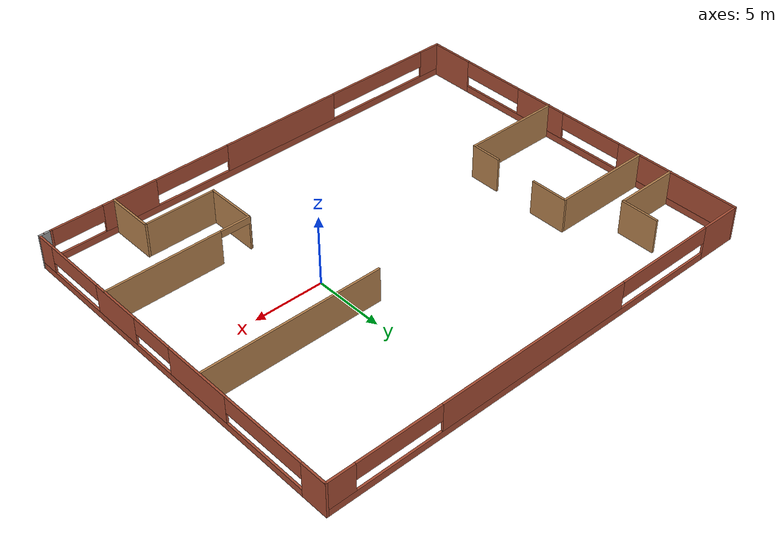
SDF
<?xml version='1.0'?>
<sdf version='1.6'>
  <model name='Building'>
    <pose frame=''>-5.08102 0.749197 0 0 -0 0</pose>
    <link name='Wall_125'>
      <pose frame=''>0.059584 13.1786 0 0 -0 0</pose>
      <visual name='Wall_125_Visual_0'>
        <pose frame=''>-15.0244 0 1.25 0 -0 0</pose>
        <geometry>
          <box>
            <size>2.9511 0.15 2.5</size>
          </box>
        </geometry>
        <material>
          <script>
            <uri>file://media/materials/scripts/gazebo.material</uri>
            <name>Gazebo/Bricks</name>
          </script>
          <ambient>1 1 1 1</ambient>
        </material>
        <meta>
          <layer>0</layer>
        </meta>
      </visual>
      <collision name='Wall_125_Collision_0'>
        <geometry>
          <box>
            <size>2.9511 0.15 2.5</size>
          </box>
        </geometry>
        <pose frame=''>-15.0244 0 1.25 0 -0 0</pose>
      </collision>
      <visual name='Wall_125_Visual_1'>
        <pose frame=''>1.47555 0 0.25 0 -0 0</pose>
        <geometry>
          <box>
            <size>30.0489 0.15 0.5</size>
          </box>
        </geometry>
        <material>
          <script>
            <uri>file://media/materials/scripts/gazebo.material</uri>
            <name>Gazebo/Bricks</name>
          </script>
          <ambient>1 1 1 1</ambient>
        </material>
        <meta>
          <layer>0</layer>
        </meta>
      </visual>
      <collision name='Wall_125_Collision_1'>
        <geometry>
          <box>
            <size>30.0489 0.15 0.5</size>
          </box>
        </geometry>
        <pose frame=''>1.47555 0 0.25 0 -0 0</pose>
      </collision>
      <visual name='Wall_125_Visual_2'>
        <pose frame=''>1.21611 0 1.5 0 -0 0</pose>
        <geometry>
          <box>
            <size>14.4547 0.15 2</size>
          </box>
        </geometry>
        <material>
          <script>
            <uri>file://media/materials/scripts/gazebo.material</uri>
            <name>Gazebo/Bricks</name>
          </script>
          <ambient>1 1 1 1</ambient>
        </material>
        <meta>
          <layer>0</layer>
        </meta>
      </visual>
      <collision name='Wall_125_Collision_2'>
        <geometry>
          <box>
            <size>14.4547 0.15 2</size>
          </box>
        </geometry>
        <pose frame=''>1.21611 0 1.5 0 -0 0</pose>
      </collision>
      <visual name='Wall_125_Visual_3'>
        <pose frame=''>15.494 0 1.5 0 -0 0</pose>
        <geometry>
          <box>
            <size>2.0121 0.15 2</size>
          </box>
        </geometry>
        <material>
          <script>
            <uri>file://media/materials/scripts/gazebo.material</uri>
            <name>Gazebo/Bricks</name>
          </script>
          <ambient>1 1 1 1</ambient>
        </material>
        <meta>
          <layer>0</layer>
        </meta>
      </visual>
      <collision name='Wall_125_Collision_3'>
        <geometry>
          <box>
            <size>2.0121 0.15 2</size>
          </box>
        </geometry>
        <pose frame=''>15.494 0 1.5 0 -0 0</pose>
      </collision>
      <visual name='Wall_125_Visual_4'>
        <pose frame=''>-9.78007 0 1.9 0 -0 0</pose>
        <geometry>
          <box>
            <size>7.53766 0.15 1.2</size>
          </box>
        </geometry>
        <material>
          <script>
            <uri>file://media/materials/scripts/gazebo.material</uri>
            <name>Gazebo/Bricks</name>
          </script>
          <ambient>1 1 1 1</ambient>
        </material>
        <meta>
          <layer>0</layer>
        </meta>
      </visual>
      <collision name='Wall_125_Collision_4'>
        <geometry>
          <box>
            <size>7.53766 0.15 1.2</size>
          </box>
        </geometry>
        <pose frame=''>-9.78007 0 1.9 0 -0 0</pose>
      </collision>
      <visual name='Wall_125_Visual_5'>
        <pose frame=''>11.4657 0 1.9 0 -0 0</pose>
        <geometry>
          <box>
            <size>6.04445 0.15 1.2</size>
          </box>
        </geometry>
        <material>
          <script>
            <uri>file://media/materials/scripts/gazebo.material</uri>
            <name>Gazebo/Bricks</name>
          </script>
          <ambient>1 1 1 1</ambient>
        </material>
        <meta>
          <layer>0</layer>
        </meta>
      </visual>
      <collision name='Wall_125_Collision_5'>
        <geometry>
          <box>
            <size>6.04445 0.15 1.2</size>
          </box>
        </geometry>
        <pose frame=''>11.4657 0 1.9 0 -0 0</pose>
      </collision>
    </link>
    <link name='Wall_127'>
      <pose frame=''>-0.149643 -13.1714 0 0 -0 3.14159</pose>
      <visual name='Wall_127_Visual_0'>
        <pose frame=''>-16.0964 0 1.25 0 -0 0</pose>
        <geometry>
          <box>
            <size>0.557218 0.15 2.5</size>
          </box>
        </geometry>
        <material>
          <script>
            <uri>file://media/materials/scripts/gazebo.material</uri>
            <name>Gazebo/Bricks</name>
          </script>
          <ambient>1 1 1 1</ambient>
        </material>
        <meta>
          <layer>0</layer>
        </meta>
      </visual>
      <collision name='Wall_127_Collision_0'>
        <geometry>
          <box>
            <size>0.557218 0.15 2.5</size>
          </box>
        </geometry>
        <pose frame=''>-16.0964 0 1.25 0 -0 0</pose>
      </collision>
      <visual name='Wall_127_Visual_1'>
        <pose frame=''>0.278609 0 0.25 0 -0 0</pose>
        <geometry>
          <box>
            <size>32.1928 0.15 0.5</size>
          </box>
        </geometry>
        <material>
          <script>
            <uri>file://media/materials/scripts/gazebo.material</uri>
            <name>Gazebo/Bricks</name>
          </script>
          <ambient>1 1 1 1</ambient>
        </material>
        <meta>
          <layer>0</layer>
        </meta>
      </visual>
      <collision name='Wall_127_Collision_1'>
        <geometry>
          <box>
            <size>32.1928 0.15 0.5</size>
          </box>
        </geometry>
        <pose frame=''>0.278609 0 0.25 0 -0 0</pose>
      </collision>
      <visual name='Wall_127_Visual_2'>
        <pose frame=''>-10.2298 0 1.5 0 -0 0</pose>
        <geometry>
          <box>
            <size>3.96485 0.15 2</size>
          </box>
        </geometry>
        <material>
          <script>
            <uri>file://media/materials/scripts/gazebo.material</uri>
            <name>Gazebo/Bricks</name>
          </script>
          <ambient>1 1 1 1</ambient>
        </material>
        <meta>
          <layer>0</layer>
        </meta>
      </visual>
      <collision name='Wall_127_Collision_2'>
        <geometry>
          <box>
            <size>3.96485 0.15 2</size>
          </box>
        </geometry>
        <pose frame=''>-10.2298 0 1.5 0 -0 0</pose>
      </collision>
      <visual name='Wall_127_Visual_3'>
        <pose frame=''>1.8819 0 1.5 0 -0 0</pose>
        <geometry>
          <box>
            <size>9.09431 0.15 2</size>
          </box>
        </geometry>
        <material>
          <script>
            <uri>file://media/materials/scripts/gazebo.material</uri>
            <name>Gazebo/Bricks</name>
          </script>
          <ambient>1 1 1 1</ambient>
        </material>
        <meta>
          <layer>0</layer>
        </meta>
      </visual>
      <collision name='Wall_127_Collision_3'>
        <geometry>
          <box>
            <size>9.09431 0.15 2</size>
          </box>
        </geometry>
        <pose frame=''>1.8819 0 1.5 0 -0 0</pose>
      </collision>
      <visual name='Wall_127_Visual_4'>
        <pose frame=''>15.4915 0 1.5 0 -0 0</pose>
        <geometry>
          <box>
            <size>1.76697 0.15 2</size>
          </box>
        </geometry>
        <material>
          <script>
            <uri>file://media/materials/scripts/gazebo.material</uri>
            <name>Gazebo/Bricks</name>
          </script>
          <ambient>1 1 1 1</ambient>
        </material>
        <meta>
          <layer>0</layer>
        </meta>
      </visual>
      <collision name='Wall_127_Collision_4'>
        <geometry>
          <box>
            <size>1.76697 0.15 2</size>
          </box>
        </geometry>
        <pose frame=''>15.4915 0 1.5 0 -0 0</pose>
      </collision>
      <visual name='Wall_127_Visual_5'>
        <pose frame=''>-14.015 0 1.9 0 -0 0</pose>
        <geometry>
          <box>
            <size>3.6056 0.15 1.2</size>
          </box>
        </geometry>
        <material>
          <script>
            <uri>file://media/materials/scripts/gazebo.material</uri>
            <name>Gazebo/Bricks</name>
          </script>
          <ambient>1 1 1 1</ambient>
        </material>
        <meta>
          <layer>0</layer>
        </meta>
      </visual>
      <collision name='Wall_127_Collision_5'>
        <geometry>
          <box>
            <size>3.6056 0.15 1.2</size>
          </box>
        </geometry>
        <pose frame=''>-14.015 0 1.9 0 -0 0</pose>
      </collision>
      <visual name='Wall_127_Visual_6'>
        <pose frame=''>-5.45629 0 1.9 0 -0 0</pose>
        <geometry>
          <box>
            <size>5.58208 0.15 1.2</size>
          </box>
        </geometry>
        <material>
          <script>
            <uri>file://media/materials/scripts/gazebo.material</uri>
            <name>Gazebo/Bricks</name>
          </script>
          <ambient>1 1 1 1</ambient>
        </material>
        <meta>
          <layer>0</layer>
        </meta>
      </visual>
      <collision name='Wall_127_Collision_6'>
        <geometry>
          <box>
            <size>5.58208 0.15 1.2</size>
          </box>
        </geometry>
        <pose frame=''>-5.45629 0 1.9 0 -0 0</pose>
      </collision>
      <visual name='Wall_127_Visual_7'>
        <pose frame=''>10.5185 0 1.9 0 -0 0</pose>
        <geometry>
          <box>
            <size>8.17896 0.15 1.2</size>
          </box>
        </geometry>
        <material>
          <script>
            <uri>file://media/materials/scripts/gazebo.material</uri>
            <name>Gazebo/Bricks</name>
          </script>
          <ambient>1 1 1 1</ambient>
        </material>
        <meta>
          <layer>0</layer>
        </meta>
      </visual>
      <collision name='Wall_127_Collision_7'>
        <geometry>
          <box>
            <size>8.17896 0.15 1.2</size>
          </box>
        </geometry>
        <pose frame=''>10.5185 0 1.9 0 -0 0</pose>
      </collision>
    </link>
    <link name='Wall_128'>
      <pose frame=''>-16.4496 0.003634 0 0 -0 1.5708</pose>
      <visual name='Wall_128_Visual_0'>
        <pose frame=''>-11.5795 0 1.25 0 -0 0</pose>
        <geometry>
          <box>
            <size>3.34094 0.15 2.5</size>
          </box>
        </geometry>
        <material>
          <script>
            <uri>file://media/materials/scripts/gazebo.material</uri>
            <name>Gazebo/Bricks</name>
          </script>
          <ambient>1 1 1 1</ambient>
        </material>
        <meta>
          <layer>0</layer>
        </meta>
      </visual>
      <collision name='Wall_128_Collision_0'>
        <geometry>
          <box>
            <size>3.34094 0.15 2.5</size>
          </box>
        </geometry>
        <pose frame=''>-11.5795 0 1.25 0 -0 0</pose>
      </collision>
      <visual name='Wall_128_Visual_1'>
        <pose frame=''>1.67047 0 0.25 0 -0 0</pose>
        <geometry>
          <box>
            <size>23.1591 0.15 0.5</size>
          </box>
        </geometry>
        <material>
          <script>
            <uri>file://media/materials/scripts/gazebo.material</uri>
            <name>Gazebo/Bricks</name>
          </script>
          <ambient>1 1 1 1</ambient>
        </material>
        <meta>
          <layer>0</layer>
        </meta>
      </visual>
      <collision name='Wall_128_Collision_1'>
        <geometry>
          <box>
            <size>23.1591 0.15 0.5</size>
          </box>
        </geometry>
        <pose frame=''>1.67047 0 0.25 0 -0 0</pose>
      </collision>
      <visual name='Wall_128_Visual_2'>
        <pose frame=''>-2.96531 0 1.5 0 -0 0</pose>
        <geometry>
          <box>
            <size>4.12946 0.15 2</size>
          </box>
        </geometry>
        <material>
          <script>
            <uri>file://media/materials/scripts/gazebo.material</uri>
            <name>Gazebo/Bricks</name>
          </script>
          <ambient>1 1 1 1</ambient>
        </material>
        <meta>
          <layer>0</layer>
        </meta>
      </visual>
      <collision name='Wall_128_Collision_2'>
        <geometry>
          <box>
            <size>4.12946 0.15 2</size>
          </box>
        </geometry>
        <pose frame=''>-2.96531 0 1.5 0 -0 0</pose>
      </collision>
      <visual name='Wall_128_Visual_3'>
        <pose frame=''>8.60155 0 1.5 0 -0 0</pose>
        <geometry>
          <box>
            <size>9.2969 0.15 2</size>
          </box>
        </geometry>
        <material>
          <script>
            <uri>file://media/materials/scripts/gazebo.material</uri>
            <name>Gazebo/Bricks</name>
          </script>
          <ambient>1 1 1 1</ambient>
        </material>
        <meta>
          <layer>0</layer>
        </meta>
      </visual>
      <collision name='Wall_128_Collision_3'>
        <geometry>
          <box>
            <size>9.2969 0.15 2</size>
          </box>
        </geometry>
        <pose frame=''>8.60155 0 1.5 0 -0 0</pose>
      </collision>
      <visual name='Wall_128_Visual_4'>
        <pose frame=''>-7.46955 0 1.9 0 -0 0</pose>
        <geometry>
          <box>
            <size>4.87902 0.15 1.2</size>
          </box>
        </geometry>
        <material>
          <script>
            <uri>file://media/materials/scripts/gazebo.material</uri>
            <name>Gazebo/Bricks</name>
          </script>
          <ambient>1 1 1 1</ambient>
        </material>
        <meta>
          <layer>0</layer>
        </meta>
      </visual>
      <collision name='Wall_128_Collision_4'>
        <geometry>
          <box>
            <size>4.87902 0.15 1.2</size>
          </box>
        </geometry>
        <pose frame=''>-7.46955 0 1.9 0 -0 0</pose>
      </collision>
      <visual name='Wall_128_Visual_5'>
        <pose frame=''>1.52626 0 1.9 0 -0 0</pose>
        <geometry>
          <box>
            <size>4.85368 0.15 1.2</size>
          </box>
        </geometry>
        <material>
          <script>
            <uri>file://media/materials/scripts/gazebo.material</uri>
            <name>Gazebo/Bricks</name>
          </script>
          <ambient>1 1 1 1</ambient>
        </material>
        <meta>
          <layer>0</layer>
        </meta>
      </visual>
      <collision name='Wall_128_Collision_5'>
        <geometry>
          <box>
            <size>4.85368 0.15 1.2</size>
          </box>
        </geometry>
        <pose frame=''>1.52626 0 1.9 0 -0 0</pose>
      </collision>
    </link>
    <link name='Wall_133'>
      <pose frame=''>16.4846 0.003634 0 0 0 -1.5708</pose>
      <visual name='Wall_133_Visual_0'>
        <pose frame=''>-12.2942 0 1.25 0 -0 0</pose>
        <geometry>
          <box>
            <size>1.91156 0.15 2.5</size>
          </box>
        </geometry>
        <material>
          <script>
            <uri>file://media/materials/scripts/gazebo.material</uri>
            <name>Gazebo/Bricks</name>
          </script>
          <ambient>1 1 1 1</ambient>
        </material>
        <meta>
          <layer>0</layer>
        </meta>
      </visual>
      <collision name='Wall_133_Collision_0'>
        <geometry>
          <box>
            <size>1.91156 0.15 2.5</size>
          </box>
        </geometry>
        <pose frame=''>-12.2942 0 1.25 0 -0 0</pose>
      </collision>
      <visual name='Wall_133_Visual_1'>
        <pose frame=''>0.95578 0 0.25 0 -0 0</pose>
        <geometry>
          <box>
            <size>24.5884 0.15 0.5</size>
          </box>
        </geometry>
        <material>
          <script>
            <uri>file://media/materials/scripts/gazebo.material</uri>
            <name>Gazebo/Bricks</name>
          </script>
          <ambient>1 1 1 1</ambient>
        </material>
        <meta>
          <layer>0</layer>
        </meta>
      </visual>
      <collision name='Wall_133_Collision_1'>
        <geometry>
          <box>
            <size>24.5884 0.15 0.5</size>
          </box>
        </geometry>
        <pose frame=''>0.95578 0 0.25 0 -0 0</pose>
      </collision>
      <visual name='Wall_133_Visual_2'>
        <pose frame=''>-2.57199 0 1.5 0 -0 0</pose>
        <geometry>
          <box>
            <size>5.04595 0.15 2</size>
          </box>
        </geometry>
        <material>
          <script>
            <uri>file://media/materials/scripts/gazebo.material</uri>
            <name>Gazebo/Bricks</name>
          </script>
          <ambient>1 1 1 1</ambient>
        </material>
        <meta>
          <layer>0</layer>
        </meta>
      </visual>
      <collision name='Wall_133_Collision_2'>
        <geometry>
          <box>
            <size>5.04595 0.15 2</size>
          </box>
        </geometry>
        <pose frame=''>-2.57199 0 1.5 0 -0 0</pose>
      </collision>
      <visual name='Wall_133_Visual_3'>
        <pose frame=''>5.12612 0 1.5 0 -0 0</pose>
        <geometry>
          <box>
            <size>3.80624 0.15 2</size>
          </box>
        </geometry>
        <material>
          <script>
            <uri>file://media/materials/scripts/gazebo.material</uri>
            <name>Gazebo/Bricks</name>
          </script>
          <ambient>1 1 1 1</ambient>
        </material>
        <meta>
          <layer>0</layer>
        </meta>
      </visual>
      <collision name='Wall_133_Collision_3'>
        <geometry>
          <box>
            <size>3.80624 0.15 2</size>
          </box>
        </geometry>
        <pose frame=''>5.12612 0 1.5 0 -0 0</pose>
      </collision>
      <visual name='Wall_133_Visual_4'>
        <pose frame=''>12.5066 0 1.5 0 -0 0</pose>
        <geometry>
          <box>
            <size>1.48671 0.15 2</size>
          </box>
        </geometry>
        <material>
          <script>
            <uri>file://media/materials/scripts/gazebo.material</uri>
            <name>Gazebo/Bricks</name>
          </script>
          <ambient>1 1 1 1</ambient>
        </material>
        <meta>
          <layer>0</layer>
        </meta>
      </visual>
      <collision name='Wall_133_Collision_4'>
        <geometry>
          <box>
            <size>1.48671 0.15 2</size>
          </box>
        </geometry>
        <pose frame=''>12.5066 0 1.5 0 -0 0</pose>
      </collision>
      <visual name='Wall_133_Visual_5'>
        <pose frame=''>-8.2167 0 1.9 0 -0 0</pose>
        <geometry>
          <box>
            <size>6.24348 0.15 1.2</size>
          </box>
        </geometry>
        <material>
          <script>
            <uri>file://media/materials/scripts/gazebo.material</uri>
            <name>Gazebo/Bricks</name>
          </script>
          <ambient>1 1 1 1</ambient>
        </material>
        <meta>
          <layer>0</layer>
        </meta>
      </visual>
      <collision name='Wall_133_Collision_5'>
        <geometry>
          <box>
            <size>6.24348 0.15 1.2</size>
          </box>
        </geometry>
        <pose frame=''>-8.2167 0 1.9 0 -0 0</pose>
      </collision>
      <visual name='Wall_133_Visual_6'>
        <pose frame=''>1.58699 0 1.9 0 -0 0</pose>
        <geometry>
          <box>
            <size>3.27201 0.15 1.2</size>
          </box>
        </geometry>
        <material>
          <script>
            <uri>file://media/materials/scripts/gazebo.material</uri>
            <name>Gazebo/Bricks</name>
          </script>
          <ambient>1 1 1 1</ambient>
        </material>
        <meta>
          <layer>0</layer>
        </meta>
      </visual>
      <collision name='Wall_133_Collision_6'>
        <geometry>
          <box>
            <size>3.27201 0.15 1.2</size>
          </box>
        </geometry>
        <pose frame=''>1.58699 0 1.9 0 -0 0</pose>
      </collision>
      <visual name='Wall_133_Visual_7'>
        <pose frame=''>9.39627 0 1.9 0 -0 0</pose>
        <geometry>
          <box>
            <size>4.73405 0.15 1.2</size>
          </box>
        </geometry>
        <material>
          <script>
            <uri>file://media/materials/scripts/gazebo.material</uri>
            <name>Gazebo/Bricks</name>
          </script>
          <ambient>1 1 1 1</ambient>
        </material>
        <meta>
          <layer>0</layer>
        </meta>
      </visual>
      <collision name='Wall_133_Collision_7'>
        <geometry>
          <box>
            <size>4.73405 0.15 1.2</size>
          </box>
        </geometry>
        <pose frame=''>9.39627 0 1.9 0 -0 0</pose>
      </collision>
    </link>
    <link name='Wall_134'>
      <collision name='Wall_134_Collision'>
        <geometry>
          <box>
            <size>0.75 0.15 2.5</size>
          </box>
        </geometry>
        <pose frame=''>0 0 1.25 0 -0 0</pose>
      </collision>
      <visual name='Wall_134_Visual'>
        <pose frame=''>0 0 1.25 0 -0 0</pose>
        <geometry>
          <box>
            <size>0.75 0.15 2.5</size>
          </box>
        </geometry>
        <material>
          <script>
            <uri>file://media/materials/scripts/gazebo.material</uri>
            <name>Gazebo/Grey</name>
          </script>
          <ambient>1 1 1 1</ambient>
        </material>
        <meta>
          <layer>0</layer>
        </meta>
      </visual>
      <pose frame=''>16.1846 -13.1714 0 0 -0 3.14159</pose>
    </link>
    <link name='Wall_143'>
      <collision name='Wall_143_Collision'>
        <geometry>
          <box>
            <size>4.75 0.15 2.5</size>
          </box>
        </geometry>
        <pose frame=''>0 0 1.25 0 -0 0</pose>
      </collision>
      <visual name='Wall_143_Visual'>
        <pose frame=''>0 0 1.25 0 -0 0</pose>
        <geometry>
          <box>
            <size>4.75 0.15 2.5</size>
          </box>
        </geometry>
        <material>
          <script>
            <uri>file://media/materials/scripts/gazebo.material</uri>
            <name>Gazebo/Wood</name>
          </script>
          <ambient>1 1 1 1</ambient>
        </material>
        <meta>
          <layer>0</layer>
        </meta>
      </visual>
      <pose frame=''>-14.1846 8.14698 0 0 -0 0</pose>
    </link>
    <link name='Wall_144'>
      <collision name='Wall_144_Collision'>
        <geometry>
          <box>
            <size>2.75 0.15 2.5</size>
          </box>
        </geometry>
        <pose frame=''>0 0 1.25 0 -0 0</pose>
      </collision>
      <visual name='Wall_144_Visual'>
        <pose frame=''>0 0 1.25 0 -0 0</pose>
        <geometry>
          <box>
            <size>2.75 0.15 2.5</size>
          </box>
        </geometry>
        <material>
          <script>
            <uri>file://media/materials/scripts/gazebo.material</uri>
            <name>Gazebo/Wood</name>
          </script>
          <ambient>1 1 1 1</ambient>
        </material>
        <meta>
          <layer>0</layer>
        </meta>
      </visual>
      <pose frame=''>-11.8846 9.44698 0 0 -0 1.5708</pose>
    </link>
    <link name='Wall_146'>
      <collision name='Wall_146_Collision'>
        <geometry>
          <box>
            <size>7.25 0.15 2.5</size>
          </box>
        </geometry>
        <pose frame=''>0 0 1.25 0 -0 0</pose>
      </collision>
      <visual name='Wall_146_Visual'>
        <pose frame=''>0 0 1.25 0 -0 0</pose>
        <geometry>
          <box>
            <size>7.25 0.15 2.5</size>
          </box>
        </geometry>
        <material>
          <script>
            <uri>file://media/materials/scripts/gazebo.material</uri>
            <name>Gazebo/Wood</name>
          </script>
          <ambient>1 1 1 1</ambient>
        </material>
        <meta>
          <layer>0</layer>
        </meta>
      </visual>
      <pose frame=''>-12.9346 -2.2626 0 0 -0 0</pose>
    </link>
    <link name='Wall_147'>
      <collision name='Wall_147_Collision'>
        <geometry>
          <box>
            <size>2.25 0.15 2.5</size>
          </box>
        </geometry>
        <pose frame=''>0 0 1.25 0 -0 0</pose>
      </collision>
      <visual name='Wall_147_Visual'>
        <pose frame=''>0 0 1.25 0 -0 0</pose>
        <geometry>
          <box>
            <size>2.25 0.15 2.5</size>
          </box>
        </geometry>
        <material>
          <script>
            <uri>file://media/materials/scripts/gazebo.material</uri>
            <name>Gazebo/Wood</name>
          </script>
          <ambient>1 1 1 1</ambient>
        </material>
        <meta>
          <layer>0</layer>
        </meta>
      </visual>
      <pose frame=''>-9.38458 -1.2126 0 0 -0 1.5708</pose>
    </link>
    <link name='Wall_149'>
      <collision name='Wall_149_Collision'>
        <geometry>
          <box>
            <size>2.75 0.15 2.5</size>
          </box>
        </geometry>
        <pose frame=''>0 0 1.25 0 -0 0</pose>
      </collision>
      <visual name='Wall_149_Visual'>
        <pose frame=''>0 0 1.25 0 -0 0</pose>
        <geometry>
          <box>
            <size>2.75 0.15 2.5</size>
          </box>
        </geometry>
        <material>
          <script>
            <uri>file://media/materials/scripts/gazebo.material</uri>
            <name>Gazebo/Wood</name>
          </script>
          <ambient>1 1 1 1</ambient>
        </material>
        <meta>
          <layer>0</layer>
        </meta>
      </visual>
      <pose frame=''>-9.32455 4.3248 0 0 -0 1.5708</pose>
    </link>
    <link name='Wall_153'>
      <collision name='Wall_153_Collision'>
        <geometry>
          <box>
            <size>7.25 0.15 2.5</size>
          </box>
        </geometry>
        <pose frame=''>0 0 1.25 0 -0 0</pose>
      </collision>
      <visual name='Wall_153_Visual'>
        <pose frame=''>0 0 1.25 0 -0 0</pose>
        <geometry>
          <box>
            <size>7.25 0.15 2.5</size>
          </box>
        </geometry>
        <material>
          <script>
            <uri>file://media/materials/scripts/gazebo.material</uri>
            <name>Gazebo/Wood</name>
          </script>
          <ambient>1 1 1 1</ambient>
        </material>
        <meta>
          <layer>0</layer>
        </meta>
      </visual>
      <pose frame=''>-12.8746 5.6248 0 0 -0 3.14159</pose>
    </link>
    <link name='Wall_155'>
      <pose frame=''>11.2766 -6.22864 0 0 -0 3.14159</pose>
      <visual name='Wall_155_Visual_0'>
        <pose frame=''>-1.11545 0 1.25 0 -0 0</pose>
        <geometry>
          <box>
            <size>8.2691 0.15 2.5</size>
          </box>
        </geometry>
        <material>
          <script>
            <uri>file://media/materials/scripts/gazebo.material</uri>
            <name>Gazebo/Wood</name>
          </script>
          <ambient>1 1 1 1</ambient>
        </material>
        <meta>
          <layer>0</layer>
        </meta>
      </visual>
      <collision name='Wall_155_Collision_0'>
        <geometry>
          <box>
            <size>8.2691 0.15 2.5</size>
          </box>
        </geometry>
        <pose frame=''>-1.11545 0 1.25 0 -0 0</pose>
      </collision>
      <visual name='Wall_155_Visual_1'>
        <pose frame=''>5.23824 0 1.25 0 -0 0</pose>
        <geometry>
          <box>
            <size>0.023525 0.15 2.5</size>
          </box>
        </geometry>
        <material>
          <script>
            <uri>file://media/materials/scripts/gazebo.material</uri>
            <name>Gazebo/Wood</name>
          </script>
          <ambient>1 1 1 1</ambient>
        </material>
        <meta>
          <layer>0</layer>
        </meta>
      </visual>
      <collision name='Wall_155_Collision_1'>
        <geometry>
          <box>
            <size>0.023525 0.15 2.5</size>
          </box>
        </geometry>
        <pose frame=''>5.23824 0 1.25 0 -0 0</pose>
      </collision>
      <visual name='Wall_155_Visual_2'>
        <pose frame=''>4.12279 0 2.25 0 -0 0</pose>
        <geometry>
          <box>
            <size>2.20738 0.15 0.5</size>
          </box>
        </geometry>
        <material>
          <script>
            <uri>file://media/materials/scripts/gazebo.material</uri>
            <name>Gazebo/Wood</name>
          </script>
          <ambient>1 1 1 1</ambient>
        </material>
        <meta>
          <layer>0</layer>
        </meta>
      </visual>
      <collision name='Wall_155_Collision_2'>
        <geometry>
          <box>
            <size>2.20738 0.15 0.5</size>
          </box>
        </geometry>
        <pose frame=''>4.12279 0 2.25 0 -0 0</pose>
      </collision>
    </link>
    <link name='Wall_156'>
      <collision name='Wall_156_Collision'>
        <geometry>
          <box>
            <size>3.75 0.15 2.5</size>
          </box>
        </geometry>
        <pose frame=''>0 0 1.25 0 -0 0</pose>
      </collision>
      <visual name='Wall_156_Visual'>
        <pose frame=''>0 0 1.25 0 -0 0</pose>
        <geometry>
          <box>
            <size>3.75 0.15 2.5</size>
          </box>
        </geometry>
        <material>
          <script>
            <uri>file://media/materials/scripts/gazebo.material</uri>
            <name>Gazebo/Wood</name>
          </script>
          <ambient>1 1 1 1</ambient>
        </material>
        <meta>
          <layer>0</layer>
        </meta>
      </visual>
      <pose frame=''>6.10157 -8.02864 0 0 0 -1.5708</pose>
    </link>
    <link name='Wall_157'>
      <collision name='Wall_157_Collision'>
        <geometry>
          <box>
            <size>5.25 0.15 2.5</size>
          </box>
        </geometry>
        <pose frame=''>0 0 1.25 0 -0 0</pose>
      </collision>
      <visual name='Wall_157_Visual'>
        <pose frame=''>0 0 1.25 0 -0 0</pose>
        <geometry>
          <box>
            <size>5.25 0.15 2.5</size>
          </box>
        </geometry>
        <material>
          <script>
            <uri>file://media/materials/scripts/gazebo.material</uri>
            <name>Gazebo/Wood</name>
          </script>
          <ambient>1 1 1 1</ambient>
        </material>
        <meta>
          <layer>0</layer>
        </meta>
      </visual>
      <pose frame=''>8.65157 -9.82864 0 0 -0 0</pose>
    </link>
    <link name='Wall_158'>
      <collision name='Wall_158_Collision'>
        <geometry>
          <box>
            <size>3.5 0.15 2.5</size>
          </box>
        </geometry>
        <pose frame=''>0 0 1.25 0 -0 0</pose>
      </collision>
      <visual name='Wall_158_Visual'>
        <pose frame=''>0 0 1.25 0 -0 0</pose>
        <geometry>
          <box>
            <size>3.5 0.15 2.5</size>
          </box>
        </geometry>
        <material>
          <script>
            <uri>file://media/materials/scripts/gazebo.material</uri>
            <name>Gazebo/Wood</name>
          </script>
          <ambient>1 1 1 1</ambient>
        </material>
        <meta>
          <layer>0</layer>
        </meta>
      </visual>
      <pose frame=''>11.2016 -11.5036 0 0 0 -1.5708</pose>
    </link>
    <link name='Wall_160'>
      <collision name='Wall_160_Collision'>
        <geometry>
          <box>
            <size>13 0.15 2.5</size>
          </box>
        </geometry>
        <pose frame=''>0 0 1.25 0 -0 0</pose>
      </collision>
      <visual name='Wall_160_Visual'>
        <pose frame=''>0 0 1.25 0 -0 0</pose>
        <geometry>
          <box>
            <size>13 0.15 2.5</size>
          </box>
        </geometry>
        <material>
          <script>
            <uri>file://media/materials/scripts/gazebo.material</uri>
            <name>Gazebo/Wood</name>
          </script>
          <ambient>0.921569 0.807843 0.615686 1</ambient>
        </material>
        <meta>
          <layer>0</layer>
        </meta>
      </visual>
      <pose frame=''>10.0287 2.78111 0 0 -0 3.14159</pose>
    </link>
    <static>1</static>
  </model>
</sdf>
